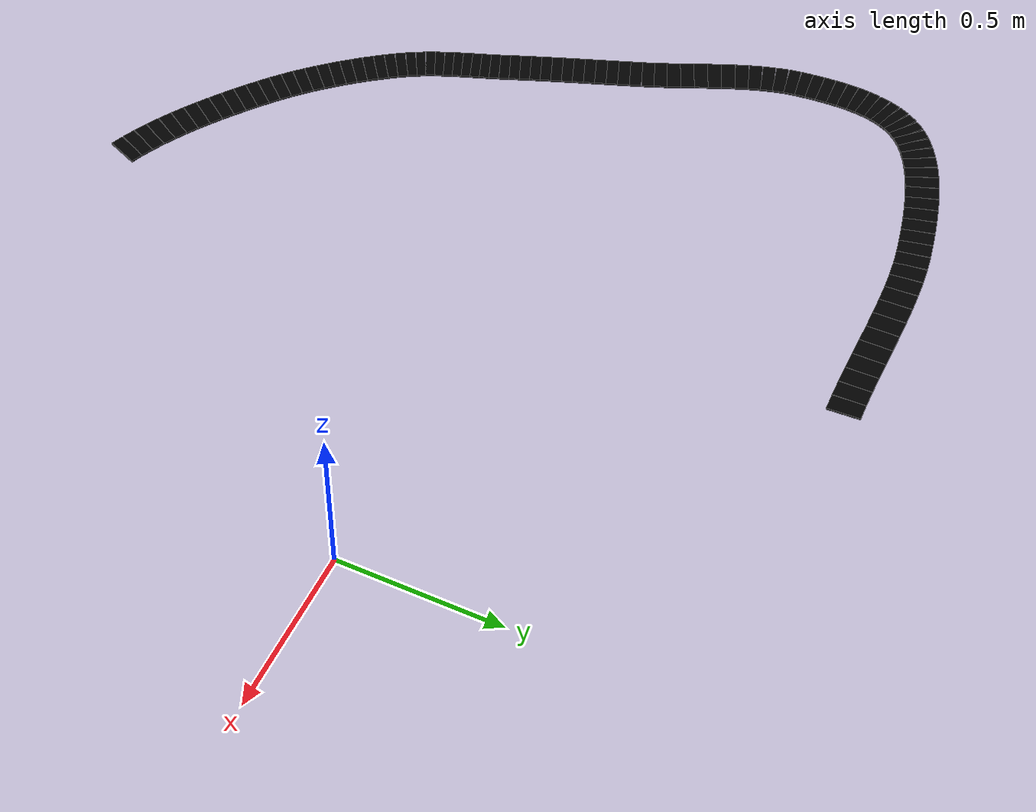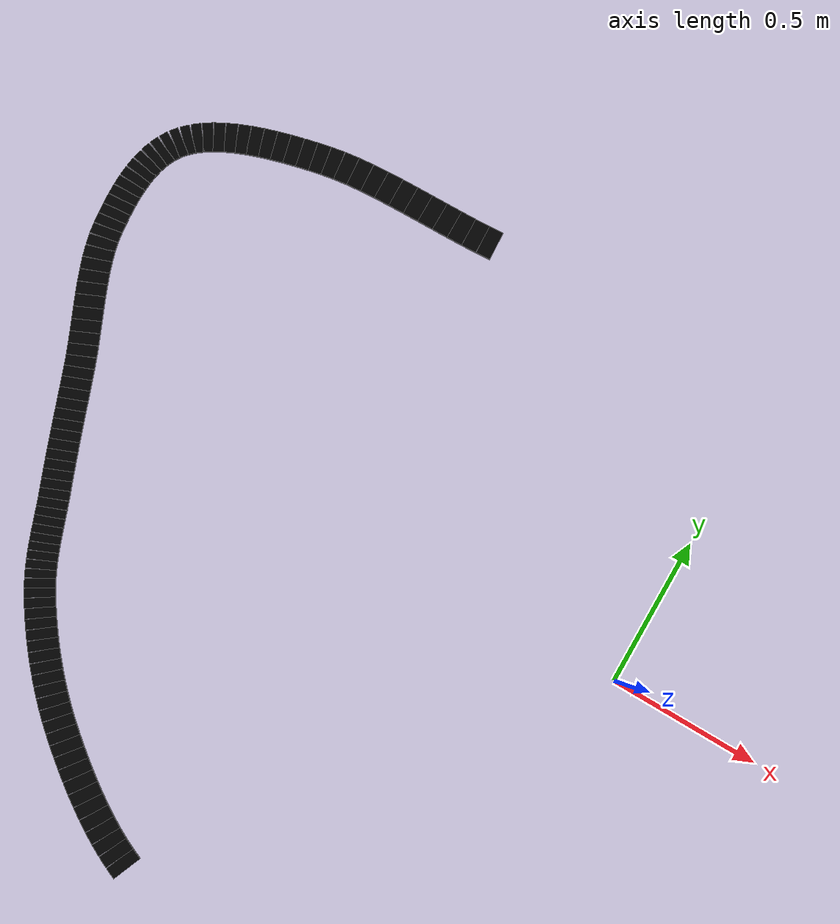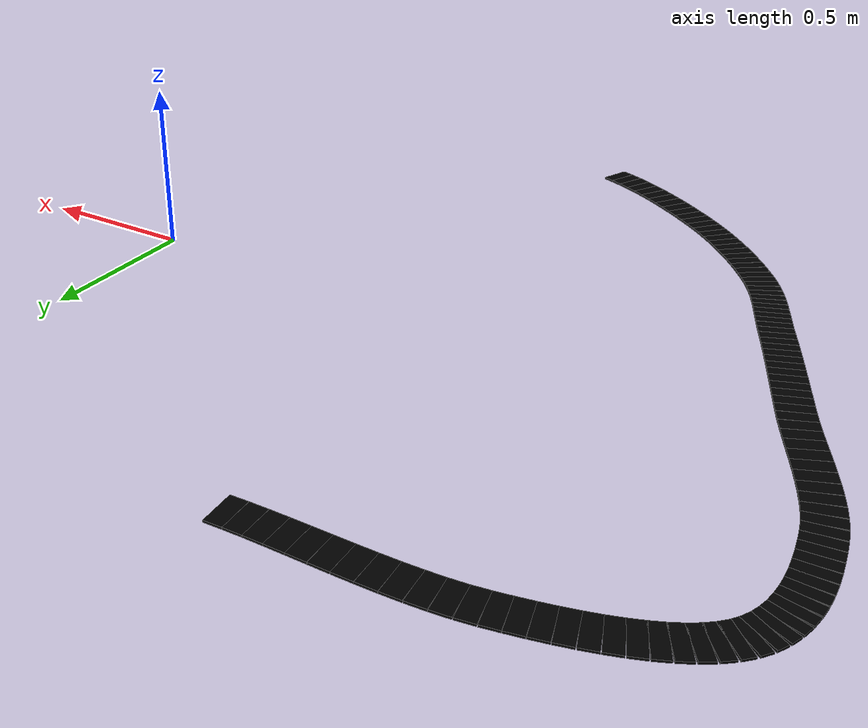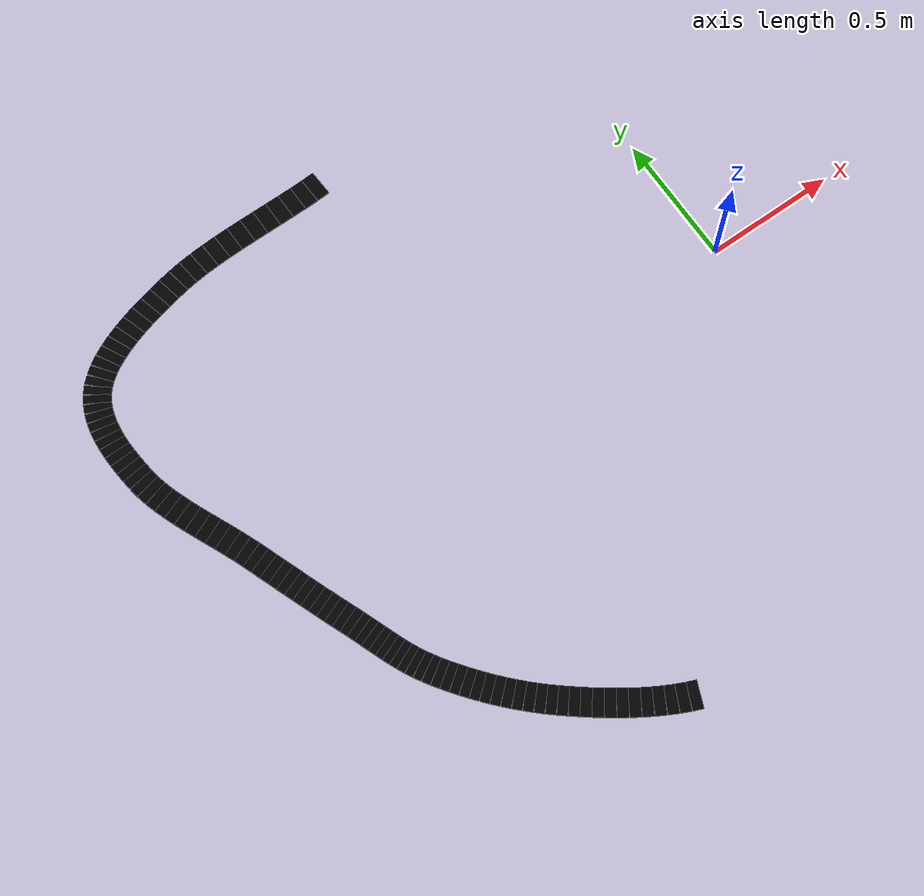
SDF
<sdf version="1.6">
 <world name="camera_line_following_world">
  <include><uri>model://sun</uri></include>
  <model name="black_line_096">
   <static>true</static>
   <pose>-1.047681 1.033563 0.018 0 0 -3.085238</pose>
   <link name="line_link">
    <visual name="line_visual">
     <geometry><box><size>0.050442 0.100000 0.006</size></box></geometry>
     <material><ambient>0 0 0 1</ambient><diffuse>0 0 0 1</diffuse><specular>0 0 0 1</specular></material>
    </visual>
   </link>
  </model>
  <model name="black_line_097">
   <static>true</static>
   <pose>-1.099039 1.031244 0.018 0 0 -3.107286</pose>
   <link name="line_link">
    <visual name="line_visual">
     <geometry><box><size>0.052385 0.100000 0.006</size></box></geometry>
     <material><ambient>0 0 0 1</ambient><diffuse>0 0 0 1</diffuse><specular>0 0 0 1</specular></material>
    </visual>
   </link>
  </model>
  <model name="black_line_098">
   <static>true</static>
   <pose>-1.152155 1.029820 0.018 0 0 -3.122083</pose>
   <link name="line_link">
    <visual name="line_visual">
     <geometry><box><size>0.053888 0.100000 0.006</size></box></geometry>
     <material><ambient>0 0 0 1</ambient><diffuse>0 0 0 1</diffuse><specular>0 0 0 1</specular></material>
    </visual>
   </link>
  </model>
  <model name="black_line_099">
   <static>true</static>
   <pose>-1.206558 1.028992 0.018 0 0 -3.130589</pose>
   <link name="line_link">
    <visual name="line_visual">
     <geometry><box><size>0.054933 0.100000 0.006</size></box></geometry>
     <material><ambient>0 0 0 1</ambient><diffuse>0 0 0 1</diffuse><specular>0 0 0 1</specular></material>
    </visual>
   </link>
  </model>
  <model name="black_line_100">
   <static>true</static>
   <pose>-1.261779 1.028462 0.018 0 0 -3.133372</pose>
   <link name="line_link">
    <visual name="line_visual">
     <geometry><box><size>0.055514 0.100000 0.006</size></box></geometry>
     <material><ambient>0 0 0 1</ambient><diffuse>0 0 0 1</diffuse><specular>0 0 0 1</specular></material>
    </visual>
   </link>
  </model>
  <model name="black_line_101">
   <static>true</static>
   <pose>-1.317347 1.027930 0.018 0 0 -3.130680</pose>
   <link name="line_link">
    <visual name="line_visual">
     <geometry><box><size>0.055628 0.100000 0.006</size></box></geometry>
     <material><ambient>0 0 0 1</ambient><diffuse>0 0 0 1</diffuse><specular>0 0 0 1</specular></material>
    </visual>
   </link>
  </model>
  <model name="black_line_102">
   <static>true</static>
   <pose>-1.372793 1.027098 0.018 0 0 -3.122480</pose>
   <link name="line_link">
    <visual name="line_visual">
     <geometry><box><size>0.055276 0.100000 0.006</size></box></geometry>
     <material><ambient>0 0 0 1</ambient><diffuse>0 0 0 1</diffuse><specular>0 0 0 1</specular></material>
    </visual>
   </link>
  </model>
  <model name="black_line_103">
   <static>true</static>
   <pose>-1.427644 1.025668 0.018 0 0 -3.108456</pose>
   <link name="line_link">
    <visual name="line_visual">
     <geometry><box><size>0.054467 0.100000 0.006</size></box></geometry>
     <material><ambient>0 0 0 1</ambient><diffuse>0 0 0 1</diffuse><specular>0 0 0 1</specular></material>
    </visual>
   </link>
  </model>
  <model name="black_line_104">
   <static>true</static>
   <pose>-1.481433 1.023340 0.018 0 0 -3.087985</pose>
   <link name="line_link">
    <visual name="line_visual">
     <geometry><box><size>0.053215 0.100000 0.006</size></box></geometry>
     <material><ambient>0 0 0 1</ambient><diffuse>0 0 0 1</diffuse><specular>0 0 0 1</specular></material>
    </visual>
   </link>
  </model>
  <model name="black_line_105">
   <static>true</static>
   <pose>-1.533687 1.019816 0.018 0 0 -3.060073</pose>
   <link name="line_link">
    <visual name="line_visual">
     <geometry><box><size>0.051541 0.100000 0.006</size></box></geometry>
     <material><ambient>0 0 0 1</ambient><diffuse>0 0 0 1</diffuse><specular>0 0 0 1</specular></material>
    </visual>
   </link>
  </model>
  <model name="black_line_106">
   <static>true</static>
   <pose>-1.583937 1.014797 0.018 0 0 -3.023255</pose>
   <link name="line_link">
    <visual name="line_visual">
     <geometry><box><size>0.049477 0.100000 0.006</size></box></geometry>
     <material><ambient>0 0 0 1</ambient><diffuse>0 0 0 1</diffuse><specular>0 0 0 1</specular></material>
    </visual>
   </link>
  </model>
  <model name="black_line_107">
   <static>true</static>
   <pose>-1.631714 1.007984 0.018 0 0 -2.975449</pose>
   <link name="line_link">
    <visual name="line_visual">
     <geometry><box><size>0.047070 0.100000 0.006</size></box></geometry>
     <material><ambient>0 0 0 1</ambient><diffuse>0 0 0 1</diffuse><specular>0 0 0 1</specular></material>
    </visual>
   </link>
  </model>
  <model name="black_line_108">
   <static>true</static>
   <pose>-1.677374 0.999476 0.018 0 0 -2.938816</pose>
   <link name="line_link">
    <visual name="line_visual">
     <geometry><box><size>0.045839 0.100000 0.006</size></box></geometry>
     <material><ambient>0 0 0 1</ambient><diffuse>0 0 0 1</diffuse><specular>0 0 0 1</specular></material>
    </visual>
   </link>
  </model>
  <model name="black_line_109">
   <static>true</static>
   <pose>-1.722147 0.989842 0.018 0 0 -2.920457</pose>
   <link name="line_link">
    <visual name="line_visual">
     <geometry><box><size>0.045760 0.100000 0.006</size></box></geometry>
     <material><ambient>0 0 0 1</ambient><diffuse>0 0 0 1</diffuse><specular>0 0 0 1</specular></material>
    </visual>
   </link>
  </model>
  <model name="black_line_110">
   <static>true</static>
   <pose>-1.766492 0.979362 0.018 0 0 -2.898498</pose>
   <link name="line_link">
    <visual name="line_visual">
     <geometry><box><size>0.045379 0.100000 0.006</size></box></geometry>
     <material><ambient>0 0 0 1</ambient><diffuse>0 0 0 1</diffuse><specular>0 0 0 1</specular></material>
    </visual>
   </link>
  </model>
  <model name="black_line_111">
   <static>true</static>
   <pose>-1.810061 0.967956 0.018 0 0 -2.872396</pose>
   <link name="line_link">
    <visual name="line_visual">
     <geometry><box><size>0.044704 0.100000 0.006</size></box></geometry>
     <material><ambient>0 0 0 1</ambient><diffuse>0 0 0 1</diffuse><specular>0 0 0 1</specular></material>
    </visual>
   </link>
  </model>
  <model name="black_line_112">
   <static>true</static>
   <pose>-1.852506 0.955543 0.018 0 0 -2.841431</pose>
   <link name="line_link">
    <visual name="line_visual">
     <geometry><box><size>0.043752 0.100000 0.006</size></box></geometry>
     <material><ambient>0 0 0 1</ambient><diffuse>0 0 0 1</diffuse><specular>0 0 0 1</specular></material>
    </visual>
   </link>
  </model>
  <model name="black_line_113">
   <static>true</static>
   <pose>-1.893478 0.942043 0.018 0 0 -2.804660</pose>
   <link name="line_link">
    <visual name="line_visual">
     <geometry><box><size>0.042540 0.100000 0.006</size></box></geometry>
     <material><ambient>0 0 0 1</ambient><diffuse>0 0 0 1</diffuse><specular>0 0 0 1</specular></material>
    </visual>
   </link>
  </model>
  <model name="black_line_114">
   <static>true</static>
   <pose>-1.932628 0.927375 0.018 0 0 -2.760856</pose>
   <link name="line_link">
    <visual name="line_visual">
     <geometry><box><size>0.041096 0.100000 0.006</size></box></geometry>
     <material><ambient>0 0 0 1</ambient><diffuse>0 0 0 1</diffuse><specular>0 0 0 1</specular></material>
    </visual>
   </link>
  </model>
  <model name="black_line_115">
   <static>true</static>
   <pose>-1.969609 0.911460 0.018 0 0 -2.708440</pose>
   <link name="line_link">
    <visual name="line_visual">
     <geometry><box><size>0.039452 0.100000 0.006</size></box></geometry>
     <material><ambient>0 0 0 1</ambient><diffuse>0 0 0 1</diffuse><specular>0 0 0 1</specular></material>
    </visual>
   </link>
  </model>
  <model name="black_line_116">
   <static>true</static>
   <pose>-2.004072 0.894216 0.018 0 0 -2.645401</pose>
   <link name="line_link">
    <visual name="line_visual">
     <geometry><box><size>0.037658 0.100000 0.006</size></box></geometry>
     <material><ambient>0 0 0 1</ambient><diffuse>0 0 0 1</diffuse><specular>0 0 0 1</specular></material>
    </visual>
   </link>
  </model>
  <model name="black_line_117">
   <static>true</static>
   <pose>-2.035667 0.875564 0.018 0 0 -2.569244</pose>
   <link name="line_link">
    <visual name="line_visual">
     <geometry><box><size>0.035777 0.100000 0.006</size></box></geometry>
     <material><ambient>0 0 0 1</ambient><diffuse>0 0 0 1</diffuse><specular>0 0 0 1</specular></material>
    </visual>
   </link>
  </model>
  <model name="black_line_118">
   <static>true</static>
   <pose>-2.064048 0.855422 0.018 0 0 -2.477036</pose>
   <link name="line_link">
    <visual name="line_visual">
     <geometry><box><size>0.033900 0.100000 0.006</size></box></geometry>
     <material><ambient>0 0 0 1</ambient><diffuse>0 0 0 1</diffuse><specular>0 0 0 1</specular></material>
    </visual>
   </link>
  </model>
  <model name="black_line_119">
   <static>true</static>
   <pose>-2.088865 0.833710 0.018 0 0 -2.365686</pose>
   <link name="line_link">
    <visual name="line_visual">
     <geometry><box><size>0.032150 0.100000 0.006</size></box></geometry>
     <material><ambient>0 0 0 1</ambient><diffuse>0 0 0 1</diffuse><specular>0 0 0 1</specular></material>
    </visual>
   </link>
  </model>
  <model name="black_line_120">
   <static>true</static>
   <pose>-2.109890 0.810225 0.018 0 0 -2.233932</pose>
   <link name="line_link">
    <visual name="line_visual">
     <geometry><box><size>0.031029 0.100000 0.006</size></box></geometry>
     <material><ambient>0 0 0 1</ambient><diffuse>0 0 0 1</diffuse><specular>0 0 0 1</specular></material>
    </visual>
   </link>
  </model>
  <model name="black_line_121">
   <static>true</static>
   <pose>-2.127223 0.784744 0.018 0 0 -2.101716</pose>
   <link name="line_link">
    <visual name="line_visual">
     <geometry><box><size>0.030741 0.100000 0.006</size></box></geometry>
     <material><ambient>0 0 0 1</ambient><diffuse>0 0 0 1</diffuse><specular>0 0 0 1</specular></material>
    </visual>
   </link>
  </model>
  <model name="black_line_122">
   <static>true</static>
   <pose>-2.141161 0.757321 0.018 0 0 -1.980624</pose>
   <link name="line_link">
    <visual name="line_visual">
     <geometry><box><size>0.030895 0.100000 0.006</size></box></geometry>
     <material><ambient>0 0 0 1</ambient><diffuse>0 0 0 1</diffuse><specular>0 0 0 1</specular></material>
    </visual>
   </link>
  </model>
  <model name="black_line_123">
   <static>true</static>
   <pose>-2.151984 0.728186 0.018 0 0 -1.873132</pose>
   <link name="line_link">
    <visual name="line_visual">
     <geometry><box><size>0.031357 0.100000 0.006</size></box></geometry>
     <material><ambient>0 0 0 1</ambient><diffuse>0 0 0 1</diffuse><specular>0 0 0 1</specular></material>
    </visual>
   </link>
  </model>
  <model name="black_line_124">
   <static>true</static>
   <pose>-2.159974 0.697567 0.018 0 0 -1.779940</pose>
   <link name="line_link">
    <visual name="line_visual">
     <geometry><box><size>0.032000 0.100000 0.006</size></box></geometry>
     <material><ambient>0 0 0 1</ambient><diffuse>0 0 0 1</diffuse><specular>0 0 0 1</specular></material>
    </visual>
   </link>
  </model>
  <model name="black_line_125">
   <static>true</static>
   <pose>-2.165413 0.665694 0.018 0 0 -1.700533</pose>
   <link name="line_link">
    <visual name="line_visual">
     <geometry><box><size>0.032717 0.100000 0.006</size></box></geometry>
     <material><ambient>0 0 0 1</ambient><diffuse>0 0 0 1</diffuse><specular>0 0 0 1</specular></material>
    </visual>
   </link>
  </model>
  <model name="black_line_126">
   <static>true</static>
   <pose>-2.168580 0.632796 0.018 0 0 -1.633758</pose>
   <link name="line_link">
    <visual name="line_visual">
     <geometry><box><size>0.033419 0.100000 0.006</size></box></geometry>
     <material><ambient>0 0 0 1</ambient><diffuse>0 0 0 1</diffuse><specular>0 0 0 1</specular></material>
    </visual>
   </link>
  </model>
  <model name="black_line_127">
   <static>true</static>
   <pose>-2.169759 0.599104 0.018 0 0 -1.578256</pose>
   <link name="line_link">
    <visual name="line_visual">
     <geometry><box><size>0.034034 0.100000 0.006</size></box></geometry>
     <material><ambient>0 0 0 1</ambient><diffuse>0 0 0 1</diffuse><specular>0 0 0 1</specular></material>
    </visual>
   </link>
  </model>
  <model name="black_line_128">
   <static>true</static>
   <pose>-2.169229 0.564845 0.018 0 0 -1.532719</pose>
   <link name="line_link">
    <visual name="line_visual">
     <geometry><box><size>0.034510 0.100000 0.006</size></box></geometry>
     <material><ambient>0 0 0 1</ambient><diffuse>0 0 0 1</diffuse><specular>0 0 0 1</specular></material>
    </visual>
   </link>
  </model>
  <model name="black_line_129">
   <static>true</static>
   <pose>-2.167272 0.530249 0.018 0 0 -1.496020</pose>
   <link name="line_link">
    <visual name="line_visual">
     <geometry><box><size>0.034804 0.100000 0.006</size></box></geometry>
     <material><ambient>0 0 0 1</ambient><diffuse>0 0 0 1</diffuse><specular>0 0 0 1</specular></material>
    </visual>
   </link>
  </model>
  <model name="black_line_130">
   <static>true</static>
   <pose>-2.164169 0.495545 0.018 0 0 -1.467269</pose>
   <link name="line_link">
    <visual name="line_visual">
     <geometry><box><size>0.034887 0.100000 0.006</size></box></geometry>
     <material><ambient>0 0 0 1</ambient><diffuse>0 0 0 1</diffuse><specular>0 0 0 1</specular></material>
    </visual>
   </link>
  </model>
  <model name="black_line_131">
   <static>true</static>
   <pose>-2.160202 0.460964 0.018 0 0 -1.445833</pose>
   <link name="line_link">
    <visual name="line_visual">
     <geometry><box><size>0.034734 0.100000 0.006</size></box></geometry>
     <material><ambient>0 0 0 1</ambient><diffuse>0 0 0 1</diffuse><specular>0 0 0 1</specular></material>
    </visual>
   </link>
  </model>
  <model name="black_line_132">
   <static>true</static>
   <pose>-2.154952 0.426274 0.018 0 0 -1.395906</pose>
   <link name="line_link">
    <visual name="line_visual">
     <geometry><box><size>0.035456 0.100000 0.006</size></box></geometry>
     <material><ambient>0 0 0 1</ambient><diffuse>0 0 0 1</diffuse><specular>0 0 0 1</specular></material>
    </visual>
   </link>
  </model>
  <model name="black_line_133">
   <static>true</static>
   <pose>-2.147354 0.390789 0.018 0 0 -1.325484</pose>
   <link name="line_link">
    <visual name="line_visual">
     <geometry><box><size>0.037169 0.100000 0.006</size></box></geometry>
     <material><ambient>0 0 0 1</ambient><diffuse>0 0 0 1</diffuse><specular>0 0 0 1</specular></material>
    </visual>
   </link>
  </model>
  <model name="black_line_134">
   <static>true</static>
   <pose>-2.137114 0.354277 0.018 0 0 -1.270326</pose>
   <link name="line_link">
    <visual name="line_visual">
     <geometry><box><size>0.038700 0.100000 0.006</size></box></geometry>
     <material><ambient>0 0 0 1</ambient><diffuse>0 0 0 1</diffuse><specular>0 0 0 1</specular></material>
    </visual>
   </link>
  </model>
  <model name="black_line_135">
   <static>true</static>
   <pose>-2.124661 0.316970 0.018 0 0 -1.227629</pose>
   <link name="line_link">
    <visual name="line_visual">
     <geometry><box><size>0.039979 0.100000 0.006</size></box></geometry>
     <material><ambient>0 0 0 1</ambient><diffuse>0 0 0 1</diffuse><specular>0 0 0 1</specular></material>
    </visual>
   </link>
  </model>
  <model name="black_line_136">
   <static>true</static>
   <pose>-2.110426 0.279097 0.018 0 0 -1.195286</pose>
   <link name="line_link">
    <visual name="line_visual">
     <geometry><box><size>0.040953 0.100000 0.006</size></box></geometry>
     <material><ambient>0 0 0 1</ambient><diffuse>0 0 0 1</diffuse><specular>0 0 0 1</specular></material>
    </visual>
   </link>
  </model>
  <model name="black_line_137">
   <static>true</static>
   <pose>-2.094837 0.240887 0.018 0 0 -1.171790</pose>
   <link name="line_link">
    <visual name="line_visual">
     <geometry><box><size>0.041588 0.100000 0.006</size></box></geometry>
     <material><ambient>0 0 0 1</ambient><diffuse>0 0 0 1</diffuse><specular>0 0 0 1</specular></material>
    </visual>
   </link>
  </model>
  <model name="black_line_138">
   <static>true</static>
   <pose>-2.078327 0.202570 0.018 0 0 -1.156137</pose>
   <link name="line_link">
    <visual name="line_visual">
     <geometry><box><size>0.041861 0.100000 0.006</size></box></geometry>
     <material><ambient>0 0 0 1</ambient><diffuse>0 0 0 1</diffuse><specular>0 0 0 1</specular></material>
    </visual>
   </link>
  </model>
  <model name="black_line_139">
   <static>true</static>
   <pose>-2.061323 0.164375 0.018 0 0 -1.147756</pose>
   <link name="line_link">
    <visual name="line_visual">
     <geometry><box><size>0.041757 0.100000 0.006</size></box></geometry>
     <material><ambient>0 0 0 1</ambient><diffuse>0 0 0 1</diffuse><specular>0 0 0 1</specular></material>
    </visual>
   </link>
  </model>
  <model name="black_line_140">
   <static>true</static>
   <pose>-2.044256 0.126533 0.018 0 0 -1.146469</pose>
   <link name="line_link">
    <visual name="line_visual">
     <geometry><box><size>0.041269 0.100000 0.006</size></box></geometry>
     <material><ambient>0 0 0 1</ambient><diffuse>0 0 0 1</diffuse><specular>0 0 0 1</specular></material>
    </visual>
   </link>
  </model>
  <model name="black_line_141">
   <static>true</static>
   <pose>-2.027557 0.089273 0.018 0 0 -1.152498</pose>
   <link name="line_link">
    <visual name="line_visual">
     <geometry><box><size>0.040395 0.100000 0.006</size></box></geometry>
     <material><ambient>0 0 0 1</ambient><diffuse>0 0 0 1</diffuse><specular>0 0 0 1</specular></material>
    </visual>
   </link>
  </model>
  <model name="black_line_142">
   <static>true</static>
   <pose>-2.011654 0.052823 0.018 0 0 -1.166507</pose>
   <link name="line_link">
    <visual name="line_visual">
     <geometry><box><size>0.039142 0.100000 0.006</size></box></geometry>
     <material><ambient>0 0 0 1</ambient><diffuse>0 0 0 1</diffuse><specular>0 0 0 1</specular></material>
    </visual>
   </link>
  </model>
  <model name="black_line_143">
   <static>true</static>
   <pose>-1.996978 0.017415 0.018 0 0 -1.189718</pose>
   <link name="line_link">
    <visual name="line_visual">
     <geometry><box><size>0.037522 0.100000 0.006</size></box></geometry>
     <material><ambient>0 0 0 1</ambient><diffuse>0 0 0 1</diffuse><specular>0 0 0 1</specular></material>
    </visual>
   </link>
  </model>
  <model name="black_line_144">
   <static>true</static>
   <pose>-1.983521 -0.016960 0.018 0 0 -1.205870</pose>
   <link name="line_link">
    <visual name="line_visual">
     <geometry><box><size>0.036312 0.100000 0.006</size></box></geometry>
     <material><ambient>0 0 0 1</ambient><diffuse>0 0 0 1</diffuse><specular>0 0 0 1</specular></material>
    </visual>
   </link>
  </model>
  <model name="black_line_145">
   <static>true</static>
   <pose>-1.970683 -0.050630 0.018 0 0 -1.207224</pose>
   <link name="line_link">
    <visual name="line_visual">
     <geometry><box><size>0.035755 0.100000 0.006</size></box></geometry>
     <material><ambient>0 0 0 1</ambient><diffuse>0 0 0 1</diffuse><specular>0 0 0 1</specular></material>
    </visual>
   </link>
  </model>
  <model name="black_line_146">
   <static>true</static>
   <pose>-1.958075 -0.083803 0.018 0 0 -1.207928</pose>
   <link name="line_link">
    <visual name="line_visual">
     <geometry><box><size>0.035221 0.100000 0.006</size></box></geometry>
     <material><ambient>0 0 0 1</ambient><diffuse>0 0 0 1</diffuse><specular>0 0 0 1</specular></material>
    </visual>
   </link>
  </model>
  <model name="black_line_147">
   <static>true</static>
   <pose>-1.945664 -0.116491 0.018 0 0 -1.207950</pose>
   <link name="line_link">
    <visual name="line_visual">
     <geometry><box><size>0.034709 0.100000 0.006</size></box></geometry>
     <material><ambient>0 0 0 1</ambient><diffuse>0 0 0 1</diffuse><specular>0 0 0 1</specular></material>
    </visual>
   </link>
  </model>
  <model name="black_line_148">
   <static>true</static>
   <pose>-1.933421 -0.148706 0.018 0 0 -1.207259</pose>
   <link name="line_link">
    <visual name="line_visual">
     <geometry><box><size>0.034218 0.100000 0.006</size></box></geometry>
     <material><ambient>0 0 0 1</ambient><diffuse>0 0 0 1</diffuse><specular>0 0 0 1</specular></material>
    </visual>
   </link>
  </model>
  <model name="black_line_149">
   <static>true</static>
   <pose>-1.921314 -0.180461 0.018 0 0 -1.205826</pose>
   <link name="line_link">
    <visual name="line_visual">
     <geometry><box><size>0.033750 0.100000 0.006</size></box></geometry>
     <material><ambient>0 0 0 1</ambient><diffuse>0 0 0 1</diffuse><specular>0 0 0 1</specular></material>
    </visual>
   </link>
  </model>
  <model name="black_line_150">
   <static>true</static>
   <pose>-1.909313 -0.211766 0.018 0 0 -1.203622</pose>
   <link name="line_link">
    <visual name="line_visual">
     <geometry><box><size>0.033303 0.100000 0.006</size></box></geometry>
     <material><ambient>0 0 0 1</ambient><diffuse>0 0 0 1</diffuse><specular>0 0 0 1</specular></material>
    </visual>
   </link>
  </model>
  <model name="black_line_151">
   <static>true</static>
   <pose>-1.897388 -0.242633 0.018 0 0 -1.200620</pose>
   <link name="line_link">
    <visual name="line_visual">
     <geometry><box><size>0.032879 0.100000 0.006</size></box></geometry>
     <material><ambient>0 0 0 1</ambient><diffuse>0 0 0 1</diffuse><specular>0 0 0 1</specular></material>
    </visual>
   </link>
  </model>
  <model name="black_line_152">
   <static>true</static>
   <pose>-1.885508 -0.273075 0.018 0 0 -1.196796</pose>
   <link name="line_link">
    <visual name="line_visual">
     <geometry><box><size>0.032477 0.100000 0.006</size></box></geometry>
     <material><ambient>0 0 0 1</ambient><diffuse>0 0 0 1</diffuse><specular>0 0 0 1</specular></material>
    </visual>
   </link>
  </model>
  <model name="black_line_153">
   <static>true</static>
   <pose>-1.873642 -0.303104 0.018 0 0 -1.192126</pose>
   <link name="line_link">
    <visual name="line_visual">
     <geometry><box><size>0.032098 0.100000 0.006</size></box></geometry>
     <material><ambient>0 0 0 1</ambient><diffuse>0 0 0 1</diffuse><specular>0 0 0 1</specular></material>
    </visual>
   </link>
  </model>
  <model name="black_line_154">
   <static>true</static>
   <pose>-1.861760 -0.332730 0.018 0 0 -1.186590</pose>
   <link name="line_link">
    <visual name="line_visual">
     <geometry><box><size>0.031743 0.100000 0.006</size></box></geometry>
     <material><ambient>0 0 0 1</ambient><diffuse>0 0 0 1</diffuse><specular>0 0 0 1</specular></material>
    </visual>
   </link>
  </model>
  <model name="black_line_155">
   <static>true</static>
   <pose>-1.849831 -0.361967 0.018 0 0 -1.180170</pose>
   <link name="line_link">
    <visual name="line_visual">
     <geometry><box><size>0.031410 0.100000 0.006</size></box></geometry>
     <material><ambient>0 0 0 1</ambient><diffuse>0 0 0 1</diffuse><specular>0 0 0 1</specular></material>
    </visual>
   </link>
  </model>
  <model name="black_line_156">
   <static>true</static>
   <pose>-1.838080 -0.390723 0.018 0 0 -1.185592</pose>
   <link name="line_link">
    <visual name="line_visual">
     <geometry><box><size>0.030719 0.100000 0.006</size></box></geometry>
     <material><ambient>0 0 0 1</ambient><diffuse>0 0 0 1</diffuse><specular>0 0 0 1</specular></material>
    </visual>
   </link>
  </model>
  <model name="black_line_157">
   <static>true</static>
   <pose>-1.826915 -0.418836 0.018 0 0 -1.200143</pose>
   <link name="line_link">
    <visual name="line_visual">
     <geometry><box><size>0.029780 0.100000 0.006</size></box></geometry>
     <material><ambient>0 0 0 1</ambient><diffuse>0 0 0 1</diffuse><specular>0 0 0 1</specular></material>
    </visual>
   </link>
  </model>
  <model name="black_line_158">
   <static>true</static>
   <pose>-1.816385 -0.446287 0.018 0 0 -1.208981</pose>
   <link name="line_link">
    <visual name="line_visual">
     <geometry><box><size>0.029023 0.100000 0.006</size></box></geometry>
     <material><ambient>0 0 0 1</ambient><diffuse>0 0 0 1</diffuse><specular>0 0 0 1</specular></material>
    </visual>
   </link>
  </model>
  <model name="black_line_159">
   <static>true</static>
   <pose>-1.806247 -0.473172 0.018 0 0 -1.211484</pose>
   <link name="line_link">
    <visual name="line_visual">
     <geometry><box><size>0.028443 0.100000 0.006</size></box></geometry>
     <material><ambient>0 0 0 1</ambient><diffuse>0 0 0 1</diffuse><specular>0 0 0 1</specular></material>
    </visual>
   </link>
  </model>
  <model name="black_line_160">
   <static>true</static>
   <pose>-1.796261 -0.499589 0.018 0 0 -1.207210</pose>
   <link name="line_link">
    <visual name="line_visual">
     <geometry><box><size>0.028040 0.100000 0.006</size></box></geometry>
     <material><ambient>0 0 0 1</ambient><diffuse>0 0 0 1</diffuse><specular>0 0 0 1</specular></material>
    </visual>
   </link>
  </model>
  <model name="black_line_161">
   <static>true</static>
   <pose>-1.786183 -0.525635 0.018 0 0 -1.195948</pose>
   <link name="line_link">
    <visual name="line_visual">
     <geometry><box><size>0.027816 0.100000 0.006</size></box></geometry>
     <material><ambient>0 0 0 1</ambient><diffuse>0 0 0 1</diffuse><specular>0 0 0 1</specular></material>
    </visual>
   </link>
  </model>
  <model name="black_line_162">
   <static>true</static>
   <pose>-1.775771 -0.551407 0.018 0 0 -1.177748</pose>
   <link name="line_link">
    <visual name="line_visual">
     <geometry><box><size>0.027777 0.100000 0.006</size></box></geometry>
     <material><ambient>0 0 0 1</ambient><diffuse>0 0 0 1</diffuse><specular>0 0 0 1</specular></material>
    </visual>
   </link>
  </model>
  <model name="black_line_163">
   <static>true</static>
   <pose>-1.764784 -0.577002 0.018 0 0 -1.152951</pose>
   <link name="line_link">
    <visual name="line_visual">
     <geometry><box><size>0.027934 0.100000 0.006</size></box></geometry>
     <material><ambient>0 0 0 1</ambient><diffuse>0 0 0 1</diffuse><specular>0 0 0 1</specular></material>
    </visual>
   </link>
  </model>
  <model name="black_line_164">
   <static>true</static>
   <pose>-1.752979 -0.602517 0.018 0 0 -1.122183</pose>
   <link name="line_link">
    <visual name="line_visual">
     <geometry><box><size>0.028300 0.100000 0.006</size></box></geometry>
     <material><ambient>0 0 0 1</ambient><diffuse>0 0 0 1</diffuse><specular>0 0 0 1</specular></material>
    </visual>
   </link>
  </model>
  <model name="black_line_165">
   <static>true</static>
   <pose>-1.740115 -0.628050 0.018 0 0 -1.086338</pose>
   <link name="line_link">
    <visual name="line_visual">
     <geometry><box><size>0.028890 0.100000 0.006</size></box></geometry>
     <material><ambient>0 0 0 1</ambient><diffuse>0 0 0 1</diffuse><specular>0 0 0 1</specular></material>
    </visual>
   </link>
  </model>
  <model name="black_line_166">
   <static>true</static>
   <pose>-1.725948 -0.653696 0.018 0 0 -1.046516</pose>
   <link name="line_link">
    <visual name="line_visual">
     <geometry><box><size>0.029720 0.100000 0.006</size></box></geometry>
     <material><ambient>0 0 0 1</ambient><diffuse>0 0 0 1</diffuse><specular>0 0 0 1</specular></material>
    </visual>
   </link>
  </model>
  <model name="black_line_167">
   <static>true</static>
   <pose>-1.710239 -0.679554 0.018 0 0 -1.003944</pose>
   <link name="line_link">
    <visual name="line_visual">
     <geometry><box><size>0.030806 0.100000 0.006</size></box></geometry>
     <material><ambient>0 0 0 1</ambient><diffuse>0 0 0 1</diffuse><specular>0 0 0 1</specular></material>
    </visual>
   </link>
  </model>
  <model name="black_line_168">
   <static>true</static>
   <pose>-1.692990 -0.705697 0.018 0 0 -0.971708</pose>
   <link name="line_link">
    <visual name="line_visual">
     <geometry><box><size>0.031843 0.100000 0.006</size></box></geometry>
     <material><ambient>0 0 0 1</ambient><diffuse>0 0 0 1</diffuse><specular>0 0 0 1</specular></material>
    </visual>
   </link>
  </model>
  <model name="black_line_169">
   <static>true</static>
   <pose>-1.674539 -0.732111 0.018 0 0 -0.950704</pose>
   <link name="line_link">
    <visual name="line_visual">
     <geometry><box><size>0.032602 0.100000 0.006</size></box></geometry>
     <material><ambient>0 0 0 1</ambient><diffuse>0 0 0 1</diffuse><specular>0 0 0 1</specular></material>
    </visual>
   </link>
  </model>
  <model name="black_line_170">
   <static>true</static>
   <pose>-1.655108 -0.758717 0.018 0 0 -0.929481</pose>
   <link name="line_link">
    <visual name="line_visual">
     <geometry><box><size>0.033293 0.100000 0.006</size></box></geometry>
     <material><ambient>0 0 0 1</ambient><diffuse>0 0 0 1</diffuse><specular>0 0 0 1</specular></material>
    </visual>
   </link>
  </model>
  <model name="black_line_171">
   <static>true</static>
   <pose>-1.634712 -0.785424 0.018 0 0 -0.907917</pose>
   <link name="line_link">
    <visual name="line_visual">
     <geometry><box><size>0.033919 0.100000 0.006</size></box></geometry>
     <material><ambient>0 0 0 1</ambient><diffuse>0 0 0 1</diffuse><specular>0 0 0 1</specular></material>
    </visual>
   </link>
  </model>
  <model name="black_line_172">
   <static>true</static>
   <pose>-1.613369 -0.812144 0.018 0 0 -0.885899</pose>
   <link name="line_link">
    <visual name="line_visual">
     <geometry><box><size>0.034480 0.100000 0.006</size></box></geometry>
     <material><ambient>0 0 0 1</ambient><diffuse>0 0 0 1</diffuse><specular>0 0 0 1</specular></material>
    </visual>
   </link>
  </model>
  <model name="black_line_173">
   <static>true</static>
   <pose>-1.591096 -0.838788 0.018 0 0 -0.863318</pose>
   <link name="line_link">
    <visual name="line_visual">
     <geometry><box><size>0.034979 0.100000 0.006</size></box></geometry>
     <material><ambient>0 0 0 1</ambient><diffuse>0 0 0 1</diffuse><specular>0 0 0 1</specular></material>
    </visual>
   </link>
  </model>
  <model name="black_line_174">
   <static>true</static>
   <pose>-1.567911 -0.865268 0.018 0 0 -0.840070</pose>
   <link name="line_link">
    <visual name="line_visual">
     <geometry><box><size>0.035418 0.100000 0.006</size></box></geometry>
     <material><ambient>0 0 0 1</ambient><diffuse>0 0 0 1</diffuse><specular>0 0 0 1</specular></material>
    </visual>
   </link>
  </model>
  <model name="black_line_175">
   <static>true</static>
   <pose>-1.543828 -0.891495 0.018 0 0 -0.816052</pose>
   <link name="line_link">
    <visual name="line_visual">
     <geometry><box><size>0.035799 0.100000 0.006</size></box></geometry>
     <material><ambient>0 0 0 1</ambient><diffuse>0 0 0 1</diffuse><specular>0 0 0 1</specular></material>
    </visual>
   </link>
  </model>
  <model name="black_line_176">
   <static>true</static>
   <pose>-1.518867 -0.917379 0.018 0 0 -0.791163</pose>
   <link name="line_link">
    <visual name="line_visual">
     <geometry><box><size>0.036125 0.100000 0.006</size></box></geometry>
     <material><ambient>0 0 0 1</ambient><diffuse>0 0 0 1</diffuse><specular>0 0 0 1</specular></material>
    </visual>
   </link>
  </model>
  <model name="black_line_177">
   <static>true</static>
   <pose>-1.493044 -0.942833 0.018 0 0 -0.765302</pose>
   <link name="line_link">
    <visual name="line_visual">
     <geometry><box><size>0.036400 0.100000 0.006</size></box></geometry>
     <material><ambient>0 0 0 1</ambient><diffuse>0 0 0 1</diffuse><specular>0 0 0 1</specular></material>
    </visual>
   </link>
  </model>
  <model name="black_line_178">
   <static>true</static>
   <pose>-1.466375 -0.967767 0.018 0 0 -0.738366</pose>
   <link name="line_link">
    <visual name="line_visual">
     <geometry><box><size>0.036626 0.100000 0.006</size></box></geometry>
     <material><ambient>0 0 0 1</ambient><diffuse>0 0 0 1</diffuse><specular>0 0 0 1</specular></material>
    </visual>
   </link>
  </model>
  <model name="black_line_179">
   <static>true</static>
   <pose>-1.438878 -0.992092 0.018 0 0 -0.710254</pose>
   <link name="line_link">
    <visual name="line_visual">
     <geometry><box><size>0.036807 0.100000 0.006</size></box></geometry>
     <material><ambient>0 0 0 1</ambient><diffuse>0 0 0 1</diffuse><specular>0 0 0 1</specular></material>
    </visual>
   </link>
  </model>
  <model name="black_line_180">
   <static>true</static>
   <pose>-1.410450 -1.016011 0.018 0 0 -0.688896</pose>
   <link name="line_link">
    <visual name="line_visual">
     <geometry><box><size>0.037500 0.100000 0.006</size></box></geometry>
     <material><ambient>0 0 0 1</ambient><diffuse>0 0 0 1</diffuse><specular>0 0 0 1</specular></material>
    </visual>
   </link>
  </model>
  <model name="black_line_181">
   <static>true</static>
   <pose>-1.380901 -1.039974 0.018 0 0 -0.674099</pose>
   <link name="line_link">
    <visual name="line_visual">
     <geometry><box><size>0.038590 0.100000 0.006</size></box></geometry>
     <material><ambient>0 0 0 1</ambient><diffuse>0 0 0 1</diffuse><specular>0 0 0 1</specular></material>
    </visual>
   </link>
  </model>
  <model name="black_line_182">
   <static>true</static>
   <pose>-1.350206 -1.064080 0.018 0 0 -0.657587</pose>
   <link name="line_link">
    <visual name="line_visual">
     <geometry><box><size>0.039471 0.100000 0.006</size></box></geometry>
     <material><ambient>0 0 0 1</ambient><diffuse>0 0 0 1</diffuse><specular>0 0 0 1</specular></material>
    </visual>
   </link>
  </model>
  <model name="black_line_183">
   <static>true</static>
   <pose>-1.318476 -1.088118 0.018 0 0 -0.639213</pose>
   <link name="line_link">
    <visual name="line_visual">
     <geometry><box><size>0.040148 0.100000 0.006</size></box></geometry>
     <material><ambient>0 0 0 1</ambient><diffuse>0 0 0 1</diffuse><specular>0 0 0 1</specular></material>
    </visual>
   </link>
  </model>
  <model name="black_line_184">
   <static>true</static>
   <pose>-1.285819 -1.111876 0.018 0 0 -0.618791</pose>
   <link name="line_link">
    <visual name="line_visual">
     <geometry><box><size>0.040624 0.100000 0.006</size></box></geometry>
     <material><ambient>0 0 0 1</ambient><diffuse>0 0 0 1</diffuse><specular>0 0 0 1</specular></material>
    </visual>
   </link>
  </model>
  <model name="black_line_185">
   <static>true</static>
   <pose>-1.252347 -1.135141 0.018 0 0 -0.596088</pose>
   <link name="line_link">
    <visual name="line_visual">
     <geometry><box><size>0.040907 0.100000 0.006</size></box></geometry>
     <material><ambient>0 0 0 1</ambient><diffuse>0 0 0 1</diffuse><specular>0 0 0 1</specular></material>
    </visual>
   </link>
  </model>
  <model name="black_line_186">
   <static>true</static>
   <pose>-1.218170 -1.157701 0.018 0 0 -0.570825</pose>
   <link name="line_link">
    <visual name="line_visual">
     <geometry><box><size>0.041004 0.100000 0.006</size></box></geometry>
     <material><ambient>0 0 0 1</ambient><diffuse>0 0 0 1</diffuse><specular>0 0 0 1</specular></material>
    </visual>
   </link>
  </model>
  <model name="black_line_187">
   <static>true</static>
   <pose>-1.183397 -1.179345 0.018 0 0 -0.542666</pose>
   <link name="line_link">
    <visual name="line_visual">
     <geometry><box><size>0.040922 0.100000 0.006</size></box></geometry>
     <material><ambient>0 0 0 1</ambient><diffuse>0 0 0 1</diffuse><specular>0 0 0 1</specular></material>
    </visual>
   </link>
  </model>
  <model name="black_line_188">
   <static>true</static>
   <pose>-1.148138 -1.199862 0.018 0 0 -0.511213</pose>
   <link name="line_link">
    <visual name="line_visual">
     <geometry><box><size>0.040674 0.100000 0.006</size></box></geometry>
     <material><ambient>0 0 0 1</ambient><diffuse>0 0 0 1</diffuse><specular>0 0 0 1</specular></material>
    </visual>
   </link>
  </model>
  <model name="black_line_189">
   <static>true</static>
   <pose>-1.112505 -1.219037 0.018 0 0 -0.475997</pose>
   <link name="line_link">
    <visual name="line_visual">
     <geometry><box><size>0.040270 0.100000 0.006</size></box></geometry>
     <material><ambient>0 0 0 1</ambient><diffuse>0 0 0 1</diffuse><specular>0 0 0 1</specular></material>
    </visual>
   </link>
  </model>
  <model name="black_line_190">
   <static>true</static>
   <pose>-1.076606 -1.236661 0.018 0 0 -0.436469</pose>
   <link name="line_link">
    <visual name="line_visual">
     <geometry><box><size>0.039728 0.100000 0.006</size></box></geometry>
     <material><ambient>0 0 0 1</ambient><diffuse>0 0 0 1</diffuse><specular>0 0 0 1</specular></material>
    </visual>
   </link>
  </model>
  <model name="black_line_191">
   <static>true</static>
   <pose>-1.040552 -1.252521 0.018 0 0 -0.391994</pose>
   <link name="line_link">
    <visual name="line_visual">
     <geometry><box><size>0.039067 0.100000 0.006</size></box></geometry>
     <material><ambient>0 0 0 1</ambient><diffuse>0 0 0 1</diffuse><specular>0 0 0 1</specular></material>
    </visual>
   </link>
  </model>
 </world>
</sdf>
